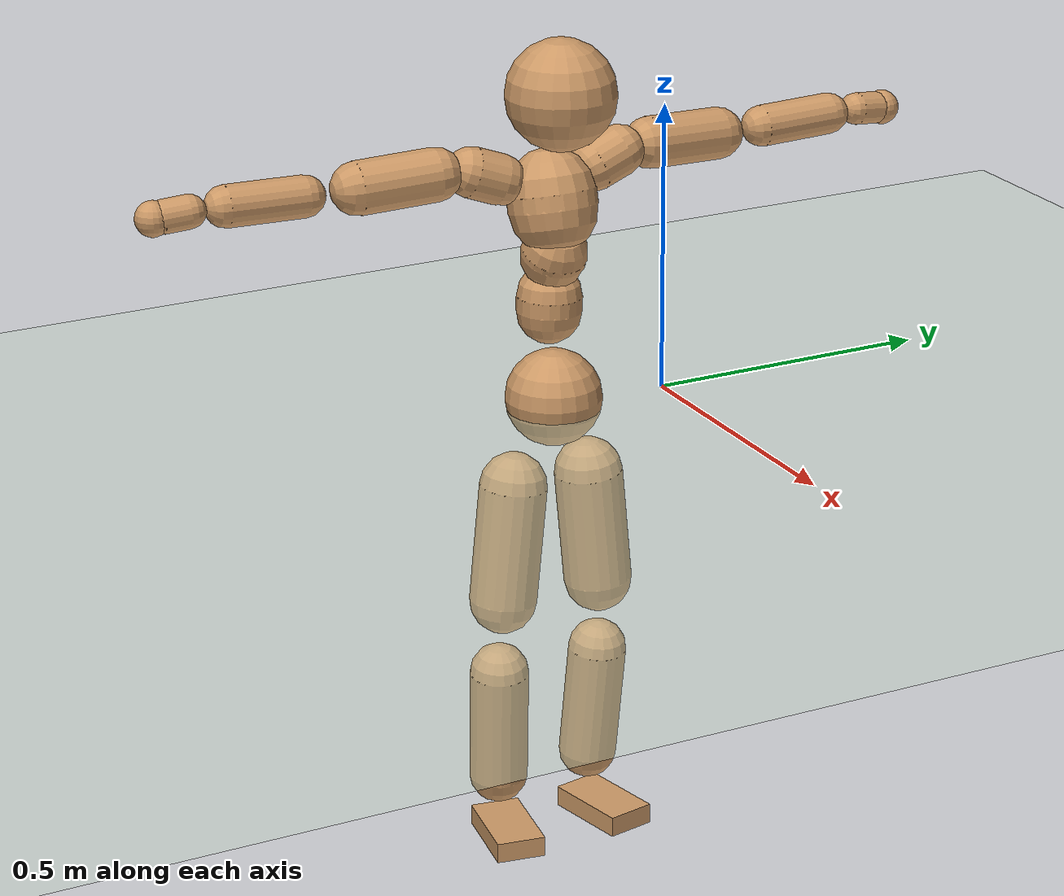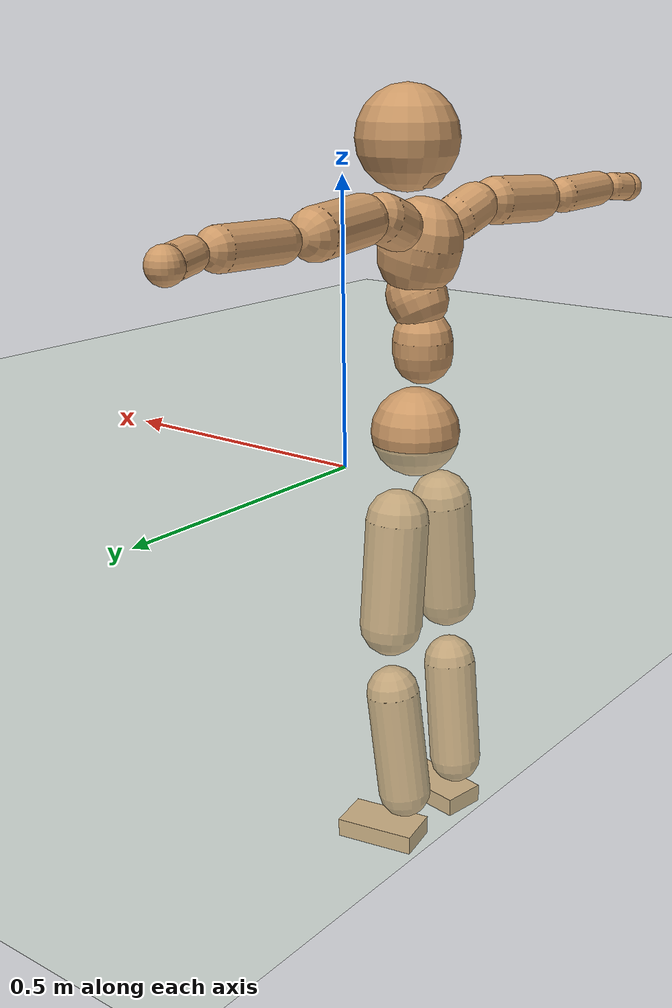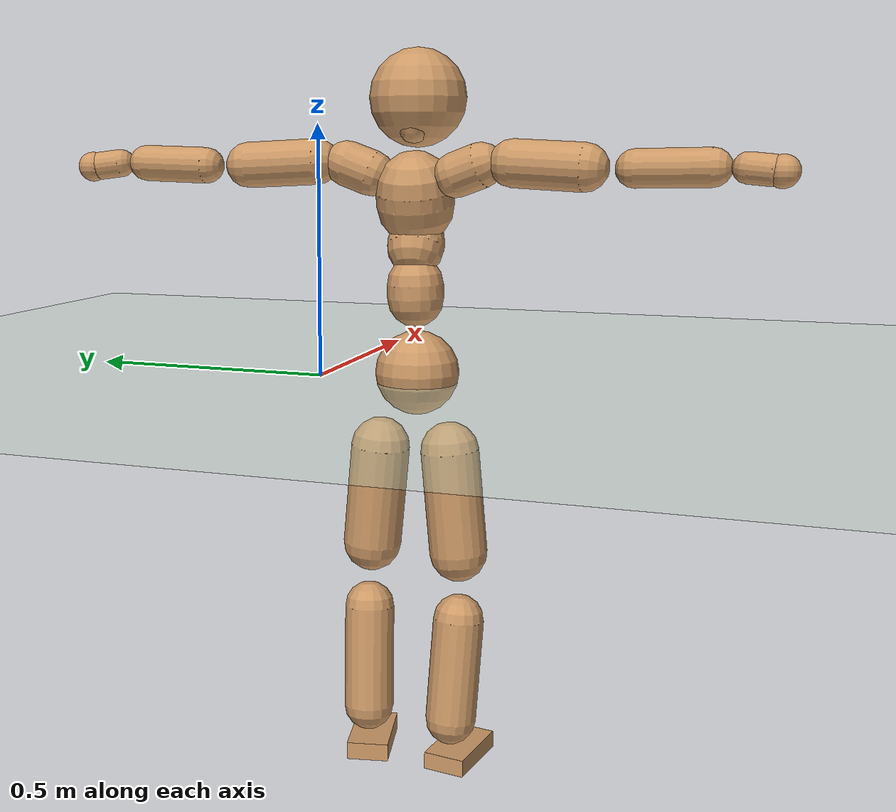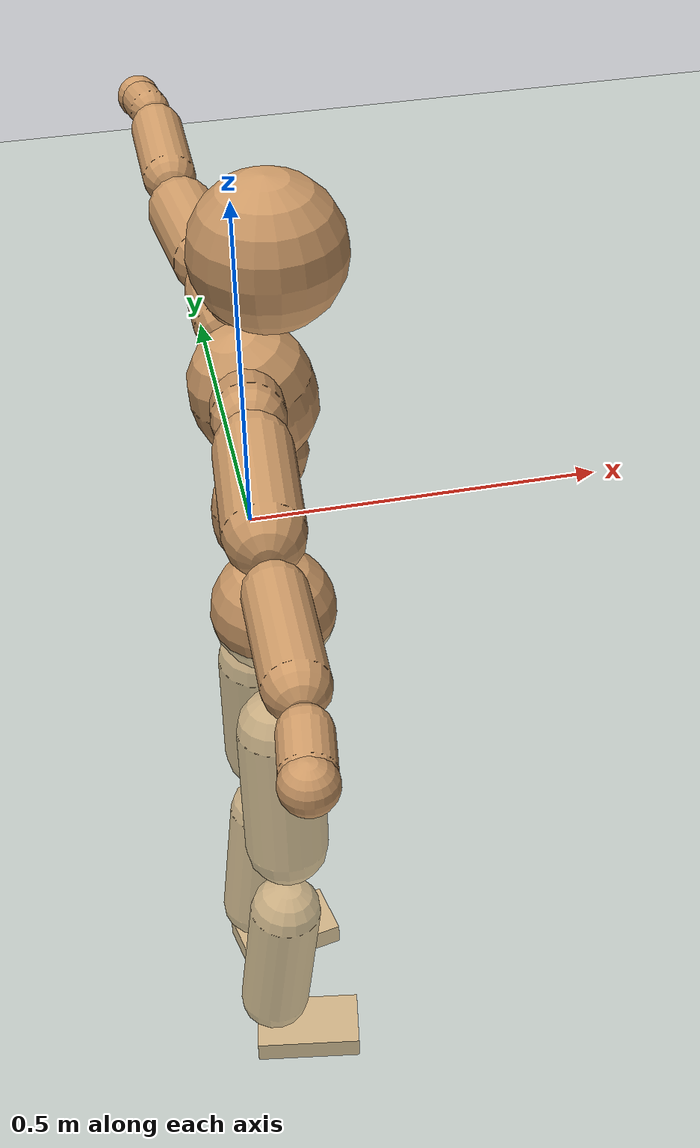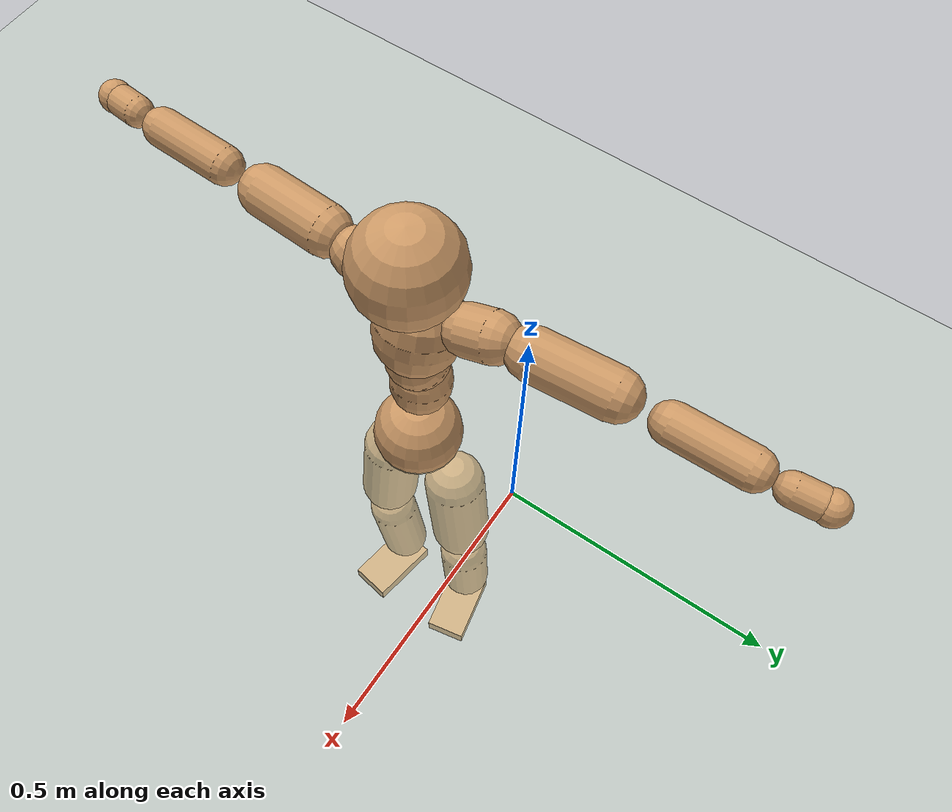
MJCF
<mujoco model="humanoid">
  <compiler coordinate="local"/>
  <default>
    <joint damping="0.0" armature="0.01" stiffness="0.0" limited="true"/>
    <geom conaffinity="1" condim="3" contype="7" margin="0.001" rgba="0.8 0.6 .4 1"/>
  </default>
  <asset>
    <texture type="skybox" builtin="gradient" rgb1=".4 .5 .6" rgb2="0 0 0" width="100" height="100"/>
    <texture builtin="flat" height="1278" mark="cross" markrgb="1 1 1" name="texgeom" random="0.01" rgb1="0.8 0.6 0.4" rgb2="0.8 0.6 0.4" type="cube" width="127"/>
    <texture builtin="checker" height="100" name="texplane" rgb1="0 0 0" rgb2="0.8 0.8 0.8" type="2d" width="100"/>
    <material name="MatPlane" reflectance="0.5" shininess="1" specular="1" texrepeat="60 60" texture="texplane"/>
    <material name="geom" texture="texgeom" texuniform="true"/>
  </asset>
  <worldbody>
    <light cutoff="100" diffuse="1 1 1" dir="-0 0 -1.3" directional="true" exponent="1" pos="0 0 1.3" specular=".1 .1 .1"/>
    <geom conaffinity="1" condim="3" name="floor" pos="0 0 0" rgba="0.8 0.9 0.8 1" size="100 100 .2" type="plane" material="MatPlane"/>
    <body name="Pelvis" pos="-0.0016 -0.2069 0.0177">
      <freejoint name="Pelvis"/>
      <geom type="sphere" contype="1" conaffinity="1" density="500" size="0.0832" pos="0.0000 0.0000 0.0000" name="Pelvis"/>
      <body name="L_Hip" pos="-0.0129 0.0668 -0.0843">
        <joint name="L_Hip_x" type="hinge" pos="0 0 0" axis="1 0 0" stiffness="800" damping="80" armature="0.02" range="-180.0000 180.0000"/>
        <joint name="L_Hip_y" type="hinge" pos="0 0 0" axis="0 1 0" stiffness="800" damping="80" armature="0.02" range="-180.0000 180.0000"/>
        <joint name="L_Hip_z" type="hinge" pos="0 0 0" axis="0 0 1" stiffness="800" damping="80" armature="0.02" range="-180.0000 180.0000"/>
        <geom type="capsule" contype="1" conaffinity="1" density="500" fromto="0.0003 0.0061 -0.0678 0.0011 0.0244 -0.2712" size="0.0588" name="L_Hip"/>
        <body name="L_Knee" pos="0.0014 0.0304 -0.339">
          <joint name="L_Knee_x" type="hinge" pos="0 0 0" axis="1 0 0" stiffness="800" damping="80" armature="0.02" range="-180.0000 180.0000"/>
          <joint name="L_Knee_y" type="hinge" pos="0 0 0" axis="0 1 0" stiffness="800" damping="80" armature="0.02" range="-180.0000 180.0000"/>
          <joint name="L_Knee_z" type="hinge" pos="0 0 0" axis="0 0 1" stiffness="800" damping="80" armature="0.02" range="-180.0000 180.0000"/>
          <geom type="capsule" contype="1" conaffinity="1" density="500" fromto="-0.0079 -0.0022 -0.0693 -0.0317 -0.0086 -0.2772" size="0.0507" name="L_Knee"/>
          <body name="L_Ankle" pos="-0.0397 -0.0108 -0.3465">
            <joint name="L_Ankle_x" type="hinge" pos="0 0 0" axis="1 0 0" stiffness="800" damping="80" armature="0.02" range="-180.0000 180.0000"/>
            <joint name="L_Ankle_y" type="hinge" pos="0 0 0" axis="0 1 0" stiffness="800" damping="80" armature="0.02" range="-180.0000 180.0000"/>
            <joint name="L_Ankle_z" type="hinge" pos="0 0 0" axis="0 0 1" stiffness="800" damping="80" armature="0.02" range="-180.0000 180.0000"/>
            <geom type="box" contype="1" conaffinity="1" density="500" pos="0.0537 0.0106 -0.0245" size="0.0772 0.0426 0.018" quat="0.9953 0.0000 0.0000 0.0973" name="L_Ankle"/>
            <body name="L_Toe" pos="0.1075 0.0212 -0.049">
              <joint name="L_Toe_x" type="hinge" pos="0 0 0" axis="1 0 0" stiffness="500" damping="50" armature="0.02" range="-180.0000 180.0000"/>
              <joint name="L_Toe_y" type="hinge" pos="0 0 0" axis="0 1 0" stiffness="500" damping="50" armature="0.02" range="-180.0000 180.0000"/>
              <joint name="L_Toe_z" type="hinge" pos="0 0 0" axis="0 0 1" stiffness="500" damping="50" armature="0.02" range="-180.0000 180.0000"/>
              <geom type="box" contype="1" conaffinity="1" density="500" pos="0.0000 0.0000 0.0247" size="0.0009 0.0021 0.0009" quat="0.9945 0.0000 0.0000 0.1043" name="L_Toe"/>
            </body>
          </body>
        </body>
      </body>
      <body name="R_Hip" pos="-0.0102 -0.0649 -0.0826">
        <joint name="R_Hip_x" type="hinge" pos="0 0 0" axis="1 0 0" stiffness="800" damping="80" armature="0.02" range="-180.0000 180.0000"/>
        <joint name="R_Hip_y" type="hinge" pos="0 0 0" axis="0 1 0" stiffness="800" damping="80" armature="0.02" range="-180.0000 180.0000"/>
        <joint name="R_Hip_z" type="hinge" pos="0 0 0" axis="0 0 1" stiffness="800" damping="80" armature="0.02" range="-180.0000 180.0000"/>
        <geom type="capsule" contype="1" conaffinity="1" density="500" fromto="-0.0004 -0.0068 -0.0695 -0.0016 -0.0273 -0.2778" size="0.0581" name="R_Hip"/>
        <body name="R_Knee" pos="-0.002 -0.0341 -0.3473">
          <joint name="R_Knee_x" type="hinge" pos="0 0 0" axis="1 0 0" stiffness="800" damping="80" armature="0.02" range="-180.0000 180.0000"/>
          <joint name="R_Knee_y" type="hinge" pos="0 0 0" axis="0 1 0" stiffness="800" damping="80" armature="0.02" range="-180.0000 180.0000"/>
          <joint name="R_Knee_z" type="hinge" pos="0 0 0" axis="0 0 1" stiffness="800" damping="80" armature="0.02" range="-180.0000 180.0000"/>
          <geom type="capsule" contype="1" conaffinity="1" density="500" fromto="-0.0076 0.0026 -0.0692 -0.0304 0.0106 -0.2769" size="0.051" name="R_Knee"/>
          <body name="R_Ankle" pos="-0.038 0.0132 -0.3461">
            <joint name="R_Ankle_x" type="hinge" pos="0 0 0" axis="1 0 0" stiffness="800" damping="80" armature="0.02" range="-180.0000 180.0000"/>
            <joint name="R_Ankle_y" type="hinge" pos="0 0 0" axis="0 1 0" stiffness="800" damping="80" armature="0.02" range="-180.0000 180.0000"/>
            <joint name="R_Ankle_z" type="hinge" pos="0 0 0" axis="0 0 1" stiffness="800" damping="80" armature="0.02" range="-180.0000 180.0000"/>
            <geom type="box" contype="1" conaffinity="1" density="500" pos="0.0551 -0.0087 -0.0211" size="0.0775 0.043 0.0178" quat="0.9969 0.0000 0.0000 -0.0785" name="R_Ankle"/>
            <body name="R_Toe" pos="0.1102 -0.0175 -0.0421">
              <joint name="R_Toe_x" type="hinge" pos="0 0 0" axis="1 0 0" stiffness="500" damping="50" armature="0.02" range="-180.0000 180.0000"/>
              <joint name="R_Toe_y" type="hinge" pos="0 0 0" axis="0 1 0" stiffness="500" damping="50" armature="0.02" range="-180.0000 180.0000"/>
              <joint name="R_Toe_z" type="hinge" pos="0 0 0" axis="0 0 1" stiffness="500" damping="50" armature="0.02" range="-180.0000 180.0000"/>
              <geom type="box" contype="1" conaffinity="1" density="500" pos="0.0000 0.0000 0.0229" size="0.0008 0.0021 0.001" quat="0.9977 0.0000 0.0000 -0.0684" name="R_Toe"/>
            </body>
          </body>
        </body>
      </body>
      <body name="Torso" pos="-0.0145 -0.0024 0.0964">
        <joint name="Torso_x" type="hinge" pos="0 0 0" axis="1 0 0" stiffness="1000" damping="100" armature="0.02" range="-180.0000 180.0000"/>
        <joint name="Torso_y" type="hinge" pos="0 0 0" axis="0 1 0" stiffness="1000" damping="100" armature="0.02" range="-180.0000 180.0000"/>
        <joint name="Torso_z" type="hinge" pos="0 0 0" axis="0 0 1" stiffness="1000" damping="100" armature="0.02" range="-180.0000 180.0000"/>
        <geom type="capsule" contype="1" conaffinity="1" density="500" fromto="-0.0004 0.0024 0.0794 -0.0002 0.0016 0.0529" size="0.055707" name="Torso"/>
        <body name="Spine" pos="-0.0006 0.004 0.1323">
          <joint name="Spine_x" type="hinge" pos="0 0 0" axis="1 0 0" stiffness="1000" damping="100" armature="0.02" range="-180.0000 180.0000"/>
          <joint name="Spine_y" type="hinge" pos="0 0 0" axis="0 1 0" stiffness="1000" damping="100" armature="0.02" range="-180.0000 180.0000"/>
          <joint name="Spine_z" type="hinge" pos="0 0 0" axis="0 0 1" stiffness="1000" damping="100" armature="0.02" range="-180.0000 180.0000"/>
          <geom type="capsule" contype="1" conaffinity="1" density="500" fromto="0.0139 0.0011 0.0283 0.0093 0.0007 0.0189" size="0.055893" name="Spine"/>
          <body name="Chest" pos="0.0232 0.0018 0.0472">
            <joint name="Chest_x" type="hinge" pos="0 0 0" axis="1 0 0" stiffness="1000" damping="100" armature="0.02" range="-180.0000 180.0000"/>
            <joint name="Chest_y" type="hinge" pos="0 0 0" axis="0 1 0" stiffness="1000" damping="100" armature="0.02" range="-180.0000 180.0000"/>
            <joint name="Chest_z" type="hinge" pos="0 0 0" axis="0 0 1" stiffness="1000" damping="100" armature="0.02" range="-180.0000 180.0000"/>
            <geom type="capsule" contype="1" conaffinity="1" density="500" fromto="-0.0207 -0.0010 0.0802 -0.0138 -0.0006 0.0534" size="0.075702" name="Chest"/>
            <body name="Neck" pos="-0.0398 -0.0028 0.1905">
              <joint name="Neck_x" type="hinge" pos="0 0 0" axis="1 0 0" stiffness="500" damping="50" armature="0.02" range="-180.0000 180.0000"/>
              <joint name="Neck_y" type="hinge" pos="0 0 0" axis="0 1 0" stiffness="500" damping="50" armature="0.02" range="-180.0000 180.0000"/>
              <joint name="Neck_z" type="hinge" pos="0 0 0" axis="0 0 1" stiffness="500" damping="50" armature="0.02" range="-180.0000 180.0000"/>
              <geom type="capsule" contype="1" conaffinity="1" density="500" fromto="0.0097 0.0010 0.0127 0.0386 0.0042 0.0509" size="0.034689" name="Neck"/>
              <body name="Head" pos="0.0483 0.0052 0.0637">
                <joint name="Head_x" type="hinge" pos="0 0 0" axis="1 0 0" stiffness="500" damping="50" armature="0.02" range="-180.0000 180.0000"/>
                <joint name="Head_y" type="hinge" pos="0 0 0" axis="0 1 0" stiffness="500" damping="50" armature="0.02" range="-180.0000 180.0000"/>
                <joint name="Head_z" type="hinge" pos="0 0 0" axis="0 0 1" stiffness="500" damping="50" armature="0.02" range="-180.0000 180.0000"/>
                <geom type="sphere" contype="1" conaffinity="1" density="500" size="0.0936" pos="0.0000 0.0000 0.0000" name="Head"/>
              </body>
            </body>
            <body name="L_Thorax" pos="-0.0291 0.0674 0.1064">
              <joint name="L_Thorax_x" type="hinge" pos="0 0 0" axis="1 0 0" stiffness="500" damping="50" armature="0.02" range="-180.0000 180.0000"/>
              <joint name="L_Thorax_y" type="hinge" pos="0 0 0" axis="0 1 0" stiffness="500" damping="50" armature="0.02" range="-180.0000 180.0000"/>
              <joint name="L_Thorax_z" type="hinge" pos="0 0 0" axis="0 0 1" stiffness="500" damping="50" armature="0.02" range="-180.0000 180.0000"/>
              <geom type="capsule" contype="1" conaffinity="1" density="500" fromto="-0.0009 0.0160 0.0060 -0.0038 0.0641 0.0239" size="0.0441" name="L_Thorax"/>
              <body name="L_Shoulder" pos="-0.0047 0.0801 0.0299">
                <joint name="L_Shoulder_x" type="hinge" pos="0 0 0" axis="1 0 0" stiffness="500" damping="50" armature="0.02" range="-720.0000 720.0000"/>
                <joint name="L_Shoulder_y" type="hinge" pos="0 0 0" axis="0 1 0" stiffness="500" damping="50" armature="0.02" range="-720.0000 720.0000"/>
                <joint name="L_Shoulder_z" type="hinge" pos="0 0 0" axis="0 0 1" stiffness="500" damping="50" armature="0.02" range="-720.0000 720.0000"/>
                <geom type="capsule" contype="1" conaffinity="1" density="500" fromto="-0.0048 0.0460 -0.0024 -0.0194 0.1842 -0.0094" size="0.0443" name="L_Shoulder"/>
                <body name="L_Elbow" pos="-0.0242 0.2302 -0.0118">
                  <joint name="L_Elbow_x" type="hinge" pos="0 0 0" axis="1 0 0" stiffness="500" damping="50" armature="0.02" range="-720.0000 720.0000"/>
                  <joint name="L_Elbow_y" type="hinge" pos="0 0 0" axis="0 1 0" stiffness="500" damping="50" armature="0.02" range="-720.0000 720.0000"/>
                  <joint name="L_Elbow_z" type="hinge" pos="0 0 0" axis="0 0 1" stiffness="500" damping="50" armature="0.02" range="-720.0000 720.0000"/>
                  <geom type="capsule" contype="1" conaffinity="1" density="500" fromto="-0.0001 0.0441 0.0014 -0.0005 0.1764 0.0054" size="0.0352" name="L_Elbow"/>
                  <body name="L_Wrist" pos="-0.0007 0.2205 0.0068">
                    <joint name="L_Wrist_x" type="hinge" pos="0 0 0" axis="1 0 0" stiffness="300" damping="30" armature="0.02" range="-180.0000 180.0000"/>
                    <joint name="L_Wrist_y" type="hinge" pos="0 0 0" axis="0 1 0" stiffness="300" damping="30" armature="0.02" range="-180.0000 180.0000"/>
                    <joint name="L_Wrist_z" type="hinge" pos="0 0 0" axis="0 0 1" stiffness="300" damping="30" armature="0.02" range="-180.0000 180.0000"/>
                    <geom type="capsule" contype="1" conaffinity="1" density="500" fromto="-0.0024 0.0146 -0.0018 -0.0097 0.0586 -0.0073" size="0.0276" name="L_Wrist"/>
                    <body name="L_Hand" pos="-0.0122 0.0732 -0.0091">
                      <joint name="L_Hand_x" type="hinge" pos="0 0 0" axis="1 0 0" stiffness="300" damping="30" armature="0.02" range="-180.0000 180.0000"/>
                      <joint name="L_Hand_y" type="hinge" pos="0 0 0" axis="0 1 0" stiffness="300" damping="30" armature="0.02" range="-180.0000 180.0000"/>
                      <joint name="L_Hand_z" type="hinge" pos="0 0 0" axis="0 0 1" stiffness="300" damping="30" armature="0.02" range="-180.0000 180.0000"/>
                      <geom type="sphere" contype="1" conaffinity="1" density="500" size="0.0296" pos="0.0000 0.0000 0.0000" name="L_Hand"/>
                    </body>
                  </body>
                </body>
              </body>
            </body>
            <body name="R_Thorax" pos="-0.0346 -0.0695 0.104">
              <joint name="R_Thorax_x" type="hinge" pos="0 0 0" axis="1 0 0" stiffness="500" damping="50" armature="0.02" range="-180.0000 180.0000"/>
              <joint name="R_Thorax_y" type="hinge" pos="0 0 0" axis="0 1 0" stiffness="500" damping="50" armature="0.02" range="-180.0000 180.0000"/>
              <joint name="R_Thorax_z" type="hinge" pos="0 0 0" axis="0 0 1" stiffness="500" damping="50" armature="0.02" range="-180.0000 180.0000"/>
              <geom type="capsule" contype="1" conaffinity="1" density="500" fromto="-0.0017 -0.0169 0.0061 -0.0069 -0.0675 0.0245" size="0.0429" name="R_Thorax"/>
              <body name="R_Shoulder" pos="-0.0086 -0.0844 0.0306">
                <joint name="R_Shoulder_x" type="hinge" pos="0 0 0" axis="1 0 0" stiffness="500" damping="50" armature="0.02" range="-720.0000 720.0000"/>
                <joint name="R_Shoulder_y" type="hinge" pos="0 0 0" axis="0 1 0" stiffness="500" damping="50" armature="0.02" range="-720.0000 720.0000"/>
                <joint name="R_Shoulder_z" type="hinge" pos="0 0 0" axis="0 0 1" stiffness="500" damping="50" armature="0.02" range="-720.0000 720.0000"/>
                <geom type="capsule" contype="1" conaffinity="1" density="500" fromto="-0.0034 -0.0451 -0.0022 -0.0137 -0.1802 -0.0087" size="0.045" name="R_Shoulder"/>
                <body name="R_Elbow" pos="-0.0171 -0.2253 -0.0109">
                  <joint name="R_Elbow_x" type="hinge" pos="0 0 0" axis="1 0 0" stiffness="500" damping="50" armature="0.02" range="-720.0000 720.0000"/>
                  <joint name="R_Elbow_y" type="hinge" pos="0 0 0" axis="0 1 0" stiffness="500" damping="50" armature="0.02" range="-720.0000 720.0000"/>
                  <joint name="R_Elbow_z" type="hinge" pos="0 0 0" axis="0 0 1" stiffness="500" damping="50" armature="0.02" range="-720.0000 720.0000"/>
                  <geom type="capsule" contype="1" conaffinity="1" density="500" fromto="-0.0010 -0.0452 0.0009 -0.0040 -0.1808 0.0035" size="0.0349" name="R_Elbow"/>
                  <body name="R_Wrist" pos="-0.005 -0.226 0.0044">
                    <joint name="R_Wrist_x" type="hinge" pos="0 0 0" axis="1 0 0" stiffness="300" damping="30" armature="0.02" range="-180.0000 180.0000"/>
                    <joint name="R_Wrist_y" type="hinge" pos="0 0 0" axis="0 1 0" stiffness="300" damping="30" armature="0.02" range="-180.0000 180.0000"/>
                    <joint name="R_Wrist_z" type="hinge" pos="0 0 0" axis="0 0 1" stiffness="300" damping="30" armature="0.02" range="-180.0000 180.0000"/>
                    <geom type="capsule" contype="1" conaffinity="1" density="500" fromto="-0.0019 -0.0147 -0.0013 -0.0075 -0.0586 -0.0053" size="0.0281" name="R_Wrist"/>
                    <body name="R_Hand" pos="-0.0094 -0.0733 -0.0067">
                      <joint name="R_Hand_x" type="hinge" pos="0 0 0" axis="1 0 0" stiffness="300" damping="30" armature="0.02" range="-180.0000 180.0000"/>
                      <joint name="R_Hand_y" type="hinge" pos="0 0 0" axis="0 1 0" stiffness="300" damping="30" armature="0.02" range="-180.0000 180.0000"/>
                      <joint name="R_Hand_z" type="hinge" pos="0 0 0" axis="0 0 1" stiffness="300" damping="30" armature="0.02" range="-180.0000 180.0000"/>
                      <geom type="sphere" contype="1" conaffinity="1" density="500" size="0.0295" pos="0.0000 0.0000 0.0000" name="R_Hand"/>
                    </body>
                  </body>
                </body>
              </body>
            </body>
          </body>
        </body>
      </body>
    </body>
  </worldbody>
  <actuator>
    <motor name="L_Hip_x" joint="L_Hip_x" gear="500"/>
    <motor name="L_Hip_y" joint="L_Hip_y" gear="500"/>
    <motor name="L_Hip_z" joint="L_Hip_z" gear="500"/>
    <motor name="L_Knee_x" joint="L_Knee_x" gear="500"/>
    <motor name="L_Knee_y" joint="L_Knee_y" gear="500"/>
    <motor name="L_Knee_z" joint="L_Knee_z" gear="500"/>
    <motor name="L_Ankle_x" joint="L_Ankle_x" gear="500"/>
    <motor name="L_Ankle_y" joint="L_Ankle_y" gear="500"/>
    <motor name="L_Ankle_z" joint="L_Ankle_z" gear="500"/>
    <motor name="L_Toe_x" joint="L_Toe_x" gear="500"/>
    <motor name="L_Toe_y" joint="L_Toe_y" gear="500"/>
    <motor name="L_Toe_z" joint="L_Toe_z" gear="500"/>
    <motor name="R_Hip_x" joint="R_Hip_x" gear="500"/>
    <motor name="R_Hip_y" joint="R_Hip_y" gear="500"/>
    <motor name="R_Hip_z" joint="R_Hip_z" gear="500"/>
    <motor name="R_Knee_x" joint="R_Knee_x" gear="500"/>
    <motor name="R_Knee_y" joint="R_Knee_y" gear="500"/>
    <motor name="R_Knee_z" joint="R_Knee_z" gear="500"/>
    <motor name="R_Ankle_x" joint="R_Ankle_x" gear="500"/>
    <motor name="R_Ankle_y" joint="R_Ankle_y" gear="500"/>
    <motor name="R_Ankle_z" joint="R_Ankle_z" gear="500"/>
    <motor name="R_Toe_x" joint="R_Toe_x" gear="500"/>
    <motor name="R_Toe_y" joint="R_Toe_y" gear="500"/>
    <motor name="R_Toe_z" joint="R_Toe_z" gear="500"/>
    <motor name="Torso_x" joint="Torso_x" gear="500"/>
    <motor name="Torso_y" joint="Torso_y" gear="500"/>
    <motor name="Torso_z" joint="Torso_z" gear="500"/>
    <motor name="Spine_x" joint="Spine_x" gear="500"/>
    <motor name="Spine_y" joint="Spine_y" gear="500"/>
    <motor name="Spine_z" joint="Spine_z" gear="500"/>
    <motor name="Chest_x" joint="Chest_x" gear="500"/>
    <motor name="Chest_y" joint="Chest_y" gear="500"/>
    <motor name="Chest_z" joint="Chest_z" gear="500"/>
    <motor name="Neck_x" joint="Neck_x" gear="500"/>
    <motor name="Neck_y" joint="Neck_y" gear="500"/>
    <motor name="Neck_z" joint="Neck_z" gear="500"/>
    <motor name="Head_x" joint="Head_x" gear="500"/>
    <motor name="Head_y" joint="Head_y" gear="500"/>
    <motor name="Head_z" joint="Head_z" gear="500"/>
    <motor name="L_Thorax_x" joint="L_Thorax_x" gear="500"/>
    <motor name="L_Thorax_y" joint="L_Thorax_y" gear="500"/>
    <motor name="L_Thorax_z" joint="L_Thorax_z" gear="500"/>
    <motor name="L_Shoulder_x" joint="L_Shoulder_x" gear="500"/>
    <motor name="L_Shoulder_y" joint="L_Shoulder_y" gear="500"/>
    <motor name="L_Shoulder_z" joint="L_Shoulder_z" gear="500"/>
    <motor name="L_Elbow_x" joint="L_Elbow_x" gear="500"/>
    <motor name="L_Elbow_y" joint="L_Elbow_y" gear="500"/>
    <motor name="L_Elbow_z" joint="L_Elbow_z" gear="500"/>
    <motor name="L_Wrist_x" joint="L_Wrist_x" gear="500"/>
    <motor name="L_Wrist_y" joint="L_Wrist_y" gear="500"/>
    <motor name="L_Wrist_z" joint="L_Wrist_z" gear="500"/>
    <motor name="L_Hand_x" joint="L_Hand_x" gear="500"/>
    <motor name="L_Hand_y" joint="L_Hand_y" gear="500"/>
    <motor name="L_Hand_z" joint="L_Hand_z" gear="500"/>
    <motor name="R_Thorax_x" joint="R_Thorax_x" gear="500"/>
    <motor name="R_Thorax_y" joint="R_Thorax_y" gear="500"/>
    <motor name="R_Thorax_z" joint="R_Thorax_z" gear="500"/>
    <motor name="R_Shoulder_x" joint="R_Shoulder_x" gear="500"/>
    <motor name="R_Shoulder_y" joint="R_Shoulder_y" gear="500"/>
    <motor name="R_Shoulder_z" joint="R_Shoulder_z" gear="500"/>
    <motor name="R_Elbow_x" joint="R_Elbow_x" gear="500"/>
    <motor name="R_Elbow_y" joint="R_Elbow_y" gear="500"/>
    <motor name="R_Elbow_z" joint="R_Elbow_z" gear="500"/>
    <motor name="R_Wrist_x" joint="R_Wrist_x" gear="500"/>
    <motor name="R_Wrist_y" joint="R_Wrist_y" gear="500"/>
    <motor name="R_Wrist_z" joint="R_Wrist_z" gear="500"/>
    <motor name="R_Hand_x" joint="R_Hand_x" gear="500"/>
    <motor name="R_Hand_y" joint="R_Hand_y" gear="500"/>
    <motor name="R_Hand_z" joint="R_Hand_z" gear="500"/>
  </actuator>
  <contact>
    <exclude body1="Torso" body2="Chest"/>
    <exclude body1="Head" body2="Chest"/>
    <exclude body1="R_Knee" body2="R_Toe"/>
    <exclude body1="R_Knee" body2="L_Ankle"/>
    <exclude body1="R_Knee" body2="L_Toe"/>
    <exclude body1="L_Knee" body2="L_Toe"/>
    <exclude body1="L_Knee" body2="R_Ankle"/>
    <exclude body1="L_Knee" body2="R_Toe"/>
    <exclude body1="L_Shoulder" body2="Chest"/>
    <exclude body1="R_Shoulder" body2="Chest"/>
  </contact>
  <sensor/>
  <size njmax="700" nconmax="700"/>
</mujoco>
